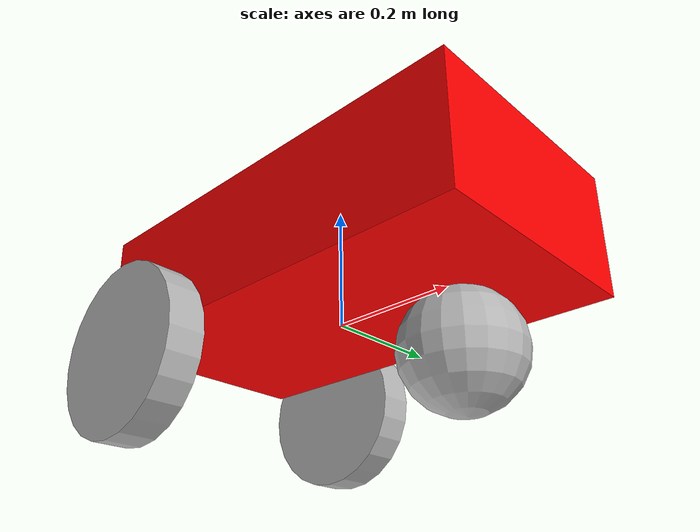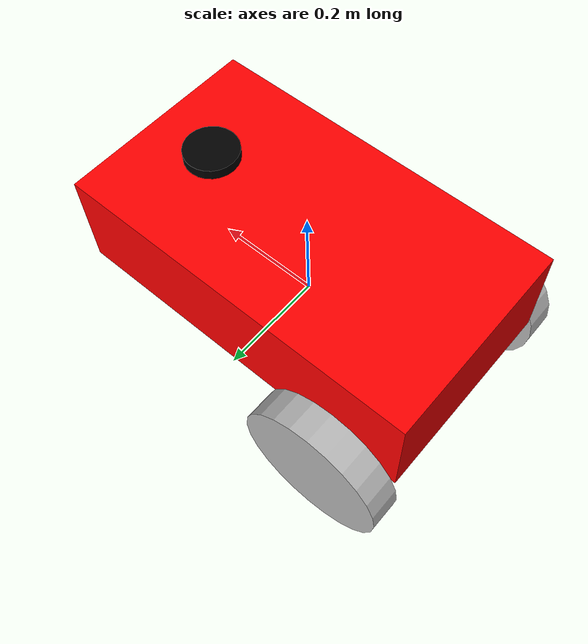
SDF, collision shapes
<?xml version="1.0" ?>
<sdf version="1.5">
  <model name="basic_mobile_bot">
  <static>false</static>

  <!-- ****************** ROBOT BASE FOOTPRINT ***************************  -->
  <pose>0.0 0.0 0.0 0.0 0.0 0.0</pose>
  <link name="base_footprint"/>

  <!-- ********************** ROBOT BASE *********************************  -->
  <link name="base_link">

    <collision name="base_collision">
      <pose>0 0 0.1 0 0 0</pose>
      <geometry>
        <box>
          <size>0.70 0.39 0.20</size>
        </box>
      </geometry>
    </collision>

    <visual name="base_visual">
      <pose>0 0 -0.05 1.5707963267949 0 3.141592654</pose>
      <geometry>
        <mesh>
          <uri>model://basic_mobile_bot_description/meshes/robot_base.stl</uri>
          <scale>1.0 1.0 1.0</scale>
        </mesh>
      </geometry>
      <material>
        <ambient>1.0 0.0 0.0 1.0</ambient>
        <diffuse>1.0 0.0 0.0 1.0</diffuse>
        <specular>0.0 0.0 0.0 1.0</specular>
        <emissive>0.0 0.0 0.0 1.0</emissive>
      </material>
    </visual>
  </link>

  <!-- *********************** IMU SENSOR SETUP **************************  -->
  <link name="imu_link">
    <gravity>true</gravity>
    <sensor name="bmb_imu" type="imu">
      <always_on>true</always_on>
      <update_rate>100</update_rate>
      <visualize>true</visualize>
      <imu>
        <orientation>
          <x>
            <noise type="gaussian">
              <mean>0.0</mean>
              <stddev>2e-3</stddev>
            </noise>
          </x>
          <y>
            <noise type="gaussian">
              <mean>0.0</mean>
              <stddev>2e-3</stddev>
            </noise>
          </y>
          <z>
            <noise type="gaussian">
              <mean>0.0</mean>
              <stddev>2e-3</stddev>
            </noise>
          </z>
        </orientation>
        <angular_velocity>
          <x>
            <noise type="gaussian">
              <mean>0.0</mean>
              <stddev>2e-4</stddev>
            </noise>
          </x>
          <y>
            <noise type="gaussian">
              <mean>0.0</mean>
              <stddev>2e-4</stddev>
            </noise>
          </y>
          <z>
            <noise type="gaussian">
              <mean>0.0</mean>
              <stddev>2e-4</stddev>
            </noise>
          </z>
        </angular_velocity>
        <linear_acceleration>
          <x>
            <noise type="gaussian">
              <mean>0.0</mean>
              <stddev>1.7e-2</stddev>
            </noise>
          </x>
          <y>
            <noise type="gaussian">
              <mean>0.0</mean>
              <stddev>1.7e-2</stddev>
            </noise>
          </y>
          <z>
            <noise type="gaussian">
              <mean>0.0</mean>
              <stddev>1.7e-2</stddev>
            </noise>
          </z>
        </linear_acceleration>
      </imu>
      <plugin name="basic_mobile_bot_imu" filename="libgazebo_ros_imu_sensor.so">
        <initial_orientation_as_reference>false</initial_orientation_as_reference>
        <frame_name>imu_link</frame_name>
        <ros>
          <namespace>/imu</namespace>
          <remapping>~/out:=data</remapping>
        </ros>
      </plugin>
    </sensor>
  </link>

  <!-- *********************** GPS SETUP *********************************  -->
  <link name="gps_link">
    <sensor name="bmb_gps" type="gps">
      <always_on>true</always_on>
      <update_rate>10.0</update_rate>
      <gps>
        <position_sensing>
          <horizontal>
            <noise type="gaussian">
              <mean>0.0</mean>
              <stddev>1e-2</stddev>
            </noise>
          </horizontal>
          <vertical>
            <noise type="gaussian">
              <mean>0.0</mean>
              <stddev>1</stddev>
            </noise>
          </vertical>
        </position_sensing>
      </gps>
      <plugin name="basic_mobile_bot_gps" filename="libgazebo_ros_gps_sensor.so">
        <ros>
          <remapping>~/out:=gps/fix</remapping>
        </ros>
      </plugin>
    </sensor>
  </link>

  <!-- ****************************** LIDAR *****************************    -->
  <link name="lidar_link">
    <inertial>
      <pose>0.215 0 0.13 0 0 0</pose>
      <inertia>
        <ixx>0.001</ixx>
        <ixy>0.000</ixy>
        <ixz>0.000</ixz>
        <iyy>0.001</iyy>
        <iyz>0.000</iyz>
        <izz>0.001</izz>
      </inertia>
      <mass>0.114</mass>
    </inertial>

    <collision name="lidar_collision">
      <pose>0.215 0 0.13 0 0 0</pose>
      <geometry>
        <cylinder>
          <radius>0.0508</radius>
          <length>0.18</length>
        </cylinder>
      </geometry>
    </collision>

    <visual name="lidar_visual">
      <pose>0.215 0 0.13 0 0 0</pose>
      <geometry>
        <cylinder>
          <radius>0.0508</radius>
          <length>0.18</length>
        </cylinder>
      </geometry>
      <material>
        <ambient>0.0 0.0 0.0 1.0</ambient>
        <diffuse>0.0 0.0 0.0 1.0</diffuse>
        <specular>0.0 0.0 0.0 1.0</specular>
        <emissive>0.0 0.0 0.0 1.0</emissive>
      </material>
    </visual>

    <sensor name="lidar" type="ray">
      <pose>0.215 0 0.215 0 0 0</pose>
      <always_on>true</always_on>
      <visualize>true</visualize>
      <update_rate>5</update_rate>
      <ray>
        <scan>
          <horizontal>
            <samples>120</samples>
            <resolution>1.000000</resolution>
            <min_angle>-3.14159</min_angle>
            <max_angle>3.14159</max_angle>
          </horizontal>
        </scan>
        <range>
          <min>0.3</min>
          <max>5.0</max>
          <resolution>0.015</resolution>
        </range>
        <noise>
          <type>gaussian</type>
          <mean>0.0</mean>
          <stddev>0.01</stddev>
        </noise>
      </ray>
      <plugin name="scan" filename="libgazebo_ros_ray_sensor.so">
        <ros>
          <remapping>~/out:=scan</remapping>
        </ros>
        <output_type>sensor_msgs/LaserScan</output_type>
        <frame_name>lidar_link</frame_name>
      </plugin>
    </sensor>
  </link>

  <!-- ****************************** CAMERA *****************************    -->
  <link name="camera_link">
    <inertial>
      <pose>0.332 0 0.019 0 0 0</pose>
      <inertia>
        <ixx>0.001</ixx>
        <ixy>0.000</ixy>
        <ixz>0.000</ixz>
        <iyy>0.001</iyy>
        <iyz>0.000</iyz>
        <izz>0.001</izz>
      </inertia>
      <mass>0.035</mass>
    </inertial>

    <collision name="camera_collision">
      <pose>0.332 0 0.019 0 0 0</pose>
      <geometry>
        <box>
          <size>0.015 0.130 0.022</size>
        </box>
      </geometry>
    </collision>

    <visual name="camera_visual">
      <pose>0.332 0 0.019 0 0 0</pose>
      <geometry>
        <box>
          <size>0.015 0.130 0.022</size>
        </box>
      </geometry>
      <material>
        <ambient>0.0 0.0 0.0 1.0</ambient>
        <diffuse>0.0 0.0 0.0 1.0</diffuse>
        <specular>0.0 0.0 0.0 1.0</specular>
        <emissive>0.0 0.0 0.0 1.0</emissive>
      </material>
    </visual>

    <sensor name="depth_camera" type="depth">
      <visualize>true</visualize>
      <update_rate>30.0</update_rate>
      <camera name="camera">
        <horizontal_fov>1.047198</horizontal_fov>
        <image>
          <width>640</width>
          <height>480</height>
          <format>R8G8B8</format>
        </image>
        <clip>
          <near>0.05</near>
          <far>3</far>
        </clip>
      </camera>
      <plugin name="depth_camera_controller" filename="libgazebo_ros_camera.so">
        <baseline>0.2</baseline>
        <alwaysOn>true</alwaysOn>
        <updateRate>0.0</updateRate>
        <frame_name>camera_depth_frame</frame_name>
        <pointCloudCutoff>0.5</pointCloudCutoff>
        <pointCloudCutoffMax>3.0</pointCloudCutoffMax>
        <distortionK1>0</distortionK1>
        <distortionK2>0</distortionK2>
        <distortionK3>0</distortionK3>
        <distortionT1>0</distortionT1>
        <distortionT2>0</distortionT2>
        <CxPrime>0</CxPrime>
        <Cx>0</Cx>
        <Cy>0</Cy>
        <focalLength>0</focalLength>
        <hackBaseline>0</hackBaseline>
      </plugin>
    </sensor>
  </link>

  <!-- *********************** DRIVE WHEELS ******************************  -->
  <link name="drivewhl_l_link">
    <pose>-0.221 0.23 -0.05 0 1.570796 1.570796</pose>

    <collision name="drivewhl_l_collision">
      <geometry>
        <cylinder>
          <radius>0.14</radius>
          <length>0.06</length>
        </cylinder>
      </geometry>
    </collision>

    <visual name="drivewhl_l_visual">
      <geometry>
        <cylinder>
          <radius>0.14</radius>
          <length>0.06</length>
        </cylinder>
      </geometry>
    </visual>
  </link>

  <link name="drivewhl_r_link">
    <pose>-0.221 -0.23 -0.05 0 1.570796 1.570796</pose>

    <collision name="drivewhl_r_collision">
      <geometry>
        <cylinder>
          <radius>0.14</radius>
          <length>0.06</length>
        </cylinder>
      </geometry>
    </collision>

    <visual name="drivewhl_r_visual">
      <geometry>
        <cylinder>
          <radius>0.14</radius>
          <length>0.06</length>
        </cylinder>
      </geometry>
    </visual>
  </link>

  <!-- *********************** CASTER WHEEL ******************************  -->
  <link name='front_caster'>
    <pose>0.217 0 -0.1 0 0 0</pose>
    <inertial>
      <inertia>
        <ixx>0.001</ixx>
        <ixy>0.000</ixy>
        <ixz>0.000</ixz>
        <iyy>0.001</iyy>
        <iyz>0.000</iyz>
        <izz>0.001</izz>
      </inertia>
      <mass>70.0</mass>
    </inertial>
    <collision name='collision'>
      <geometry>
        <sphere>
          <radius>0.09</radius>
        </sphere>
      </geometry>
      <surface>
        <friction>
          <ode>
            <mu>0.01</mu>
            <mu2>0.01</mu2>
            <slip1>1.0</slip1>
            <slip2>1.0</slip2>
          </ode>
        </friction>
      </surface>
    </collision>
    <visual name="front_caster_visual">
      <geometry>
        <sphere>
          <radius>0.09</radius>
        </sphere>
      </geometry>
    </visual>
  </link>

  <!-- ************************ JOINTS ***********************************  -->
  <!-- Pose of the joint is the same as the child link frame -->
  <!-- Axis is the axis of rotation relative to the child link frame -->

  <joint name="base_joint" type="fixed">
    <parent>base_footprint</parent>
    <child>base_link</child>
    <pose>0 0 0 0 0 0</pose>
  </joint>

  <joint name="drivewhl_l_joint" type="revolute">
    <parent>base_link</parent>
    <child>drivewhl_l_link</child>
    <pose>0 0 0 0 0 0</pose>
    <axis>
      <xyz>0 0 1</xyz>
    </axis>
  </joint>

  <joint name="drivewhl_r_joint" type="revolute">
    <parent>base_link</parent>
    <child>drivewhl_r_link</child>
    <pose>0 0 0 0 0 0</pose>
    <axis>
      <xyz>0 0 1</xyz>
    </axis>
  </joint>

  <joint name='caster_joint' type='fixed'>
    <parent>base_link</parent>
    <child>front_caster</child>
    <pose>0 0 0 0 0 0</pose>
  </joint>

  <joint name="imu_joint" type="fixed">
    <parent>base_link</parent>
    <child>imu_link</child>
    <pose>0 0 0 0 0 0</pose>
  </joint>

  <joint name="gps_joint" type="fixed">
    <parent>base_link</parent>
    <child>gps_link</child>
    <pose>0 0 0 0 0 0</pose>
  </joint>

  <joint name="lidar_joint" type="fixed">
    <parent>base_link</parent>
    <child>lidar_link</child>
    <pose>0 0 0 0 0 0</pose>
  </joint>

  <joint name="camera_joint" type="fixed">
    <parent>base_link</parent>
    <child>camera_link</child>
    <pose>0 0 0 0 0 0</pose>
  </joint>

  <joint name="camera_depth_joint" type="fixed">
    <parent>camera_link</parent>
    <child>camera_depth_frame</child>
    <pose>0 0 0 0 0 0</pose>
  </joint>

 <!-- *********************** WHEEL ODOMETRY ***************************    -->
  <plugin name="basic_mobile_bot_diff_drive" filename="libgazebo_ros_diff_drive.so">

    <update_rate>30</update_rate>

    <!-- wheels -->
    <left_joint>drivewhl_l_joint</left_joint>
    <right_joint>drivewhl_r_joint</right_joint>

    <!-- kinematics -->
    <wheel_separation>0.52</wheel_separation>
    <wheel_diameter>0.28</wheel_diameter>

    <!-- limits -->
    <max_wheel_torque>20</max_wheel_torque>
    <max_wheel_acceleration>1.0</max_wheel_acceleration>

    <!-- Receive velocity commands on this ROS topic -->
    <command_topic>cmd_vel</command_topic>

    <!-- output -->
    <!-- When false, publish no wheel odometry data to a ROS topic -->
    <publish_odom>true</publish_odom>

    <!-- When true, publish coordinate transform from odom to base_footprint -->
    <!-- I usually use the robot_localization package to publish this transform -->
    <publish_odom_tf>false</publish_odom_tf>

    <!-- When true, publish coordinate transform from base_link to the wheels -->
    <!-- The robot_state_publisher package is often used to publish this transform -->
    <publish_wheel_tf>false</publish_wheel_tf>

    <odometry_topic>odom</odometry_topic>
    <odometry_frame>odom</odometry_frame>
    <robot_base_frame>base_footprint</robot_base_frame>

    <!-- Odometry source, 0 for ENCODER, 1 for WORLD, defaults to WORLD -->
    <odometry_source>1</odometry_source>

    <!-- Change the ROS topic we will publish the odometry data to -->
    <ros>
      <remapping>odom:=odom</remapping>
    </ros>

  </plugin>

 <!-- *********************** JOINT STATE PUBLISHER *********************   -->

  <plugin name="basic_mobile_bot_joint_state" filename="libgazebo_ros_joint_state_publisher.so">
    <ros>
      <remapping>~/out:=joint_states</remapping>
    </ros>
    <update_rate>30</update_rate>
    <joint_name>drivewhl_l_joint</joint_name>
    <joint_name>drivewhl_r_joint</joint_name>
  </plugin>

  </model>
</sdf>
